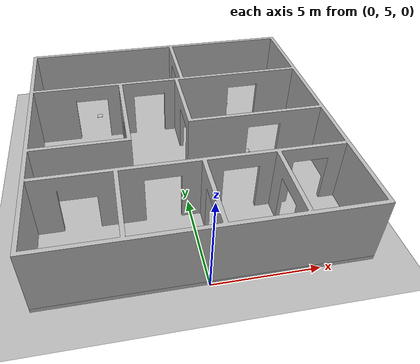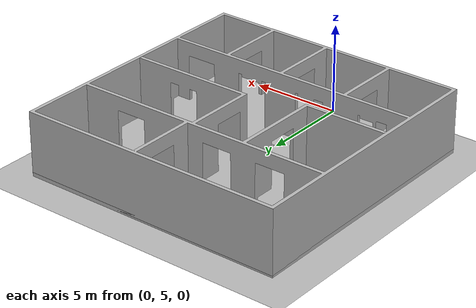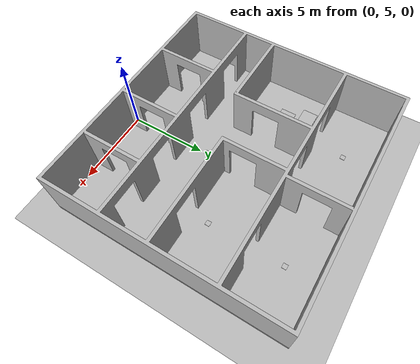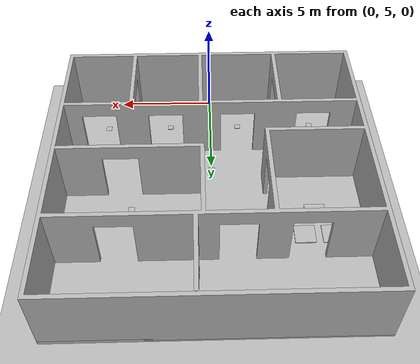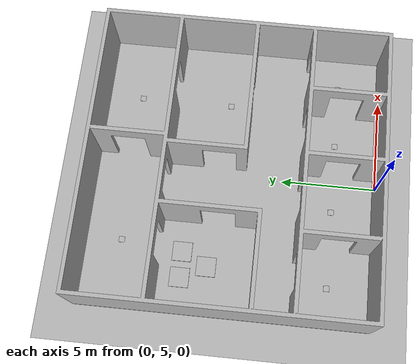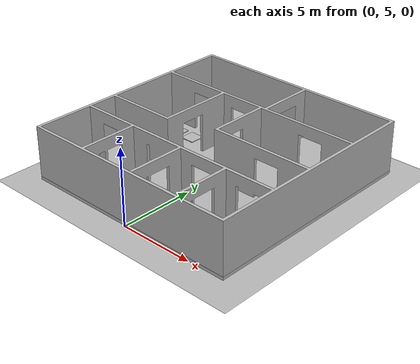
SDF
<?xml version="1.0"?>
<sdf version="1.5">
    <world name="default">
        <include>
            <uri>model://sun</uri>
        </include>

        <include>
            <uri>model://ground_my</uri>
        </include>

        <include>
            <uri>model://house_scene_2</uri>
            <static>true</static>
            <pose>0 12.5 0 0 0 0</pose>
        </include>

        <include>
            <uri>model://qr_1</uri>
            <static>true</static>
            <pose>0 12.5 0 0 0 0</pose>
        </include>

        <include>
            <uri>model://platform</uri>
            <static>true</static>
            <pose>-5.5 6.3 0.27 0 0 0</pose>
        </include>

        <include>
            <uri>model://platform_scnd</uri>
            <static>true</static>
            <pose>-5 13.5 0.27 0 0 0</pose>
        </include>

        <physics name='default_physics' default='0' type='ode'>
      <gravity>0 0 -9.8066</gravity>
      <ode>
        <solver>
          <type>quick</type>
          <iters>10</iters>
          <sor>1.3</sor>
          <use_dynamic_moi_rescaling>0</use_dynamic_moi_rescaling>
        </solver>
        <constraints>
          <cfm>0</cfm>
          <erp>0.2</erp>
          <contact_max_correcting_vel>100</contact_max_correcting_vel>
          <contact_surface_layer>0.001</contact_surface_layer>
        </constraints>
      </ode>
      <max_step_size>0.004</max_step_size>
      <real_time_factor>1</real_time_factor>
      <real_time_update_rate>250</real_time_update_rate>
      <magnetic_field>6.0e-6 2.3e-5 -4.2e-5</magnetic_field>
    </physics>

     </world>
</sdf>

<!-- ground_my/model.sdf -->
<sdf version="1.5">
    <model name="ground">
        <static>true</static>
        <link name="link">
            <collision name="collision">
                <geometry>
                    <mesh>
                        <scale>1 1 1</scale>
                        <uri>model://ground_my/meshes/ground.dae</uri>
                    </mesh>
                    <surface>
                    <friction>
                        <ode>
                            <mu>1.2</mu>
                            <mu2>1.2</mu2>
                        </ode>
                    </friction>
                    </surface>
                </geometry>
            </collision>
            <visual name="visual">
              <geometry>
                <mesh>
                    <scale>1 1 1</scale>
                    <uri>model://ground_my/meshes/ground.dae</uri>
                </mesh>
              </geometry>
             </visual>
        </link>
    </model>
</sdf>

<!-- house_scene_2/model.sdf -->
<sdf version="1.5">
    <model name="house">
        <static>true</static>
        <link name="link">
            <collision name="collision_wall">
                <pose>0 0 0.05 0 0 0</pose>
                <geometry>
                    <mesh>
                        <uri>model://house_scene_2/meshes/scene_two.stl</uri>
                    </mesh>
                </geometry>
            </collision>
            <visual name="visual_walls">
              <pose>0 0 0.05 0 0 0</pose>
              <geometry>
              <mesh>
                 <uri>model://house_scene_2/meshes/scene_two_house_with_qr_30.dae</uri>
              </mesh>
              </geometry>
              <material>
                  <script>
                      <uri>model://house_scene_2/materials/scripts</uri>
                      <uri>model://house_scene_2/materials/textures</uri>
                      <name>houseMat/Diffuse</name>
                  </script>
              </material>
             </visual>

             <collision name="collision_flor">
                <pose>0 0 0.05 0 0 0</pose>
                <geometry>
                    <mesh>
                        <uri>model://house_scene_2/meshes/scene_two_house_wallpapers_flor.dae</uri>
                    </mesh>
                </geometry>
            </collision>
            <visual name="visual_flor">
              <pose>0 0 0.05 0 0 0</pose>
              <geometry>
              <mesh>
                 <uri>model://house_scene_2/meshes/scene_two_house_wallpapers_flor.dae</uri>
              </mesh>
              </geometry>
              <material>
                  <script>
                      <uri>model://house_scene_2/materials/scripts</uri>
                      <uri>model://house_scene_2/materials/textures</uri>
                      <name>houseMat/Diffuse</name>
                  </script>
              </material>
             </visual>

        </link>
    </model>
</sdf>

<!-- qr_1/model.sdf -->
<sdf version="1.5">
    <model name="qr">
        <static>true</static>
        <link name="link">
            <collision name="collision1">
                <pose>-4 5.5 0.27 0 0 0</pose>
                <geometry>
                    <mesh>
                        <uri>model://qr_1/meshes/qr.stl</uri>
                    </mesh>
                </geometry>
            </collision>
            <visual name="visual1">

              <pose>-4 5.5 0.27 0 0 0</pose>
              <geometry>
              <mesh>
                 <uri>model://qr_1/meshes/qr2.dae</uri>
              </mesh>
              </geometry>

              <material>
                  <script>
                      <uri>model://qr_1/materials/scripts</uri>
                      <uri>model://qr_1/materials/textures</uri>
                      <name>qrMat/Diffuse</name>
                  </script>
              </material>
             </visual>

             <collision name="collision2">
                <pose>4 5.5 0.27 0 0 0</pose>
                <geometry>
                    <mesh>
                        <uri>model://qr_1/meshes/qr.stl</uri>
                    </mesh>
                </geometry>
            </collision>
             <visual name="visual2">

              <pose>4 5.5 0.27 0 0 0</pose>
              <geometry>
              <mesh>
                 <uri>model://qr_1/meshes/qr4.dae</uri>
              </mesh>
              </geometry>

              <material>
                  <script>
                      <uri>model://qr_1/materials/scripts</uri>
                      <uri>model://qr_1/materials/textures</uri>
                      <name>qrMat/Diffuse</name>
                  </script>
              </material>
             </visual>

             <collision name="collision3">
                <pose>4 0.6 0.27 0 0 0</pose>
                <geometry>
                    <mesh>
                        <uri>model://qr_1/meshes/qr.stl</uri>
                    </mesh>
                </geometry>
            </collision>
            <visual name="visual3">

              <pose>4 0.6 0.27 0 0 0</pose>
              <geometry>
              <mesh>
                 <uri>model://qr_1/meshes/qr5.dae</uri>
              </mesh>
              </geometry>

              <material>
                  <script>
                      <uri>model://qr_1/materials/scripts</uri>
                      <uri>model://qr_1/materials/textures</uri>
                      <name>qrMat/Diffuse</name>
                  </script>
              </material>
             </visual>

             <collision name="collision5">
                <pose>0 -2 0.27 0 0 0</pose>
                <geometry>
                    <mesh>
                        <uri>model://qr_1/meshes/qr.stl</uri>
                    </mesh>
                </geometry>
            </collision>
            <visual name="visual5">

              <pose>0 -2 0.27 0 0 0</pose>
              <geometry>
              <mesh>
                 <uri>model://qr_1/meshes/qr6.dae</uri>
              </mesh>
              </geometry>

              <material>
                  <script>
                      <uri>model://qr_1/materials/scripts</uri>
                      <uri>model://qr_1/materials/textures</uri>
                      <name>qrMat/Diffuse</name>
                  </script>
              </material>
             </visual>

             <collision name="collision6">
                <pose>-5.5 -5.2 0.27 0 0 0</pose>
                <geometry>
                    <mesh>
                        <uri>model://qr_1/meshes/qr.stl</uri>
                    </mesh>
                </geometry>
            </collision>
            <visual name="visual6">

              <pose>-5.5 -5.2 0.27 0 0 0</pose>
              <geometry>
              <mesh>
                 <uri>model://qr_1/meshes/qr15.dae</uri>
              </mesh>
              </geometry>

              <material>
                  <script>
                      <uri>model://qr_1/materials/scripts</uri>
                      <uri>model://qr_1/materials/textures</uri>
                      <name>qrMat/Diffuse</name>
                  </script>
              </material>
             </visual>

             <collision name="collision7">
                <pose>-1.5 -5.2 0.27 0 0 0</pose>
                <geometry>
                    <mesh>
                        <uri>model://qr_1/meshes/qr.stl</uri>
                    </mesh>
                </geometry>
            </collision>
             <visual name="visual7">

              <pose>-1.5 -5.2 0.27 0 0 0</pose>
              <geometry>
              <mesh>
                 <uri>model://qr_1/meshes/qr14.dae</uri>
              </mesh>
              </geometry>

              <material>
                  <script>
                      <uri>model://qr_1/materials/scripts</uri>
                      <uri>model://qr_1/materials/textures</uri>
                      <name>qrMat/Diffuse</name>
                  </script>
              </material>
             </visual>

             <collision name="collision8">
                <pose>2.2 -5.2 0.27 0 0 0</pose>
                <geometry>
                    <mesh>
                        <uri>model://qr_1/meshes/qr.stl</uri>
                    </mesh>
                </geometry>
            </collision>
            <visual name="visual8">

              <pose>2.2 -5.2 0.27 0 0 0</pose>
              <geometry>
              <mesh>
                 <uri>model://qr_1/meshes/qr13.dae</uri>
              </mesh>
              </geometry>

              <material>
                  <script>
                      <uri>model://qr_1/materials/scripts</uri>
                      <uri>model://qr_1/materials/textures</uri>
                      <name>qrMat/Diffuse</name>
                  </script>
              </material>
             </visual>

             <collision name="collision9">
                <pose>5.6 -5.2 0.27 0 0 0</pose>
                <geometry>
                    <mesh>
                        <uri>model://qr_1/meshes/qr.stl</uri>
                    </mesh>
                </geometry>
            </collision>
            <visual name="visual9">

              <pose>5.6 -5.2 0.27 0 0 0</pose>
              <geometry>
              <mesh>
                 <uri>model://qr_1/meshes/qr12.dae</uri>
              </mesh>
              </geometry>

              <material>
                  <script>
                      <uri>model://qr_1/materials/scripts</uri>
                      <uri>model://qr_1/materials/textures</uri>
                      <name>qrMat/Diffuse</name>
                  </script>
              </material>
             </visual>
        </link>
    </model>
</sdf>

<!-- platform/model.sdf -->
<sdf version="1.6">
  <model name="platform">
    <static>false</static>
    <link name="dummy_upper"/>

    <joint name="world_joint" type="fixed">
      <parent>world</parent>
      <child>dummy_upper</child>
    </joint>
  </model>
</sdf>

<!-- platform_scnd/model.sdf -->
<sdf version="1.5">
    <model name="platform_scnd">
        <static>true</static>
        <link name="link">
            <collision name="collision">
                <pose>0 0 0 0 0 0</pose>
                <geometry>
                    <mesh>
                        <uri>model://platform_scnd/meshes/metki.dae</uri>
                    </mesh>
                </geometry>
            </collision>
            <visual name="visual">
              <pose>0 0 0 0 0 0</pose>
              <geometry>
              <mesh>
                 <uri>model://platform_scnd/meshes/metki.dae</uri>
              </mesh>
              </geometry>
             </visual>
        </link>
    </model>
</sdf>
